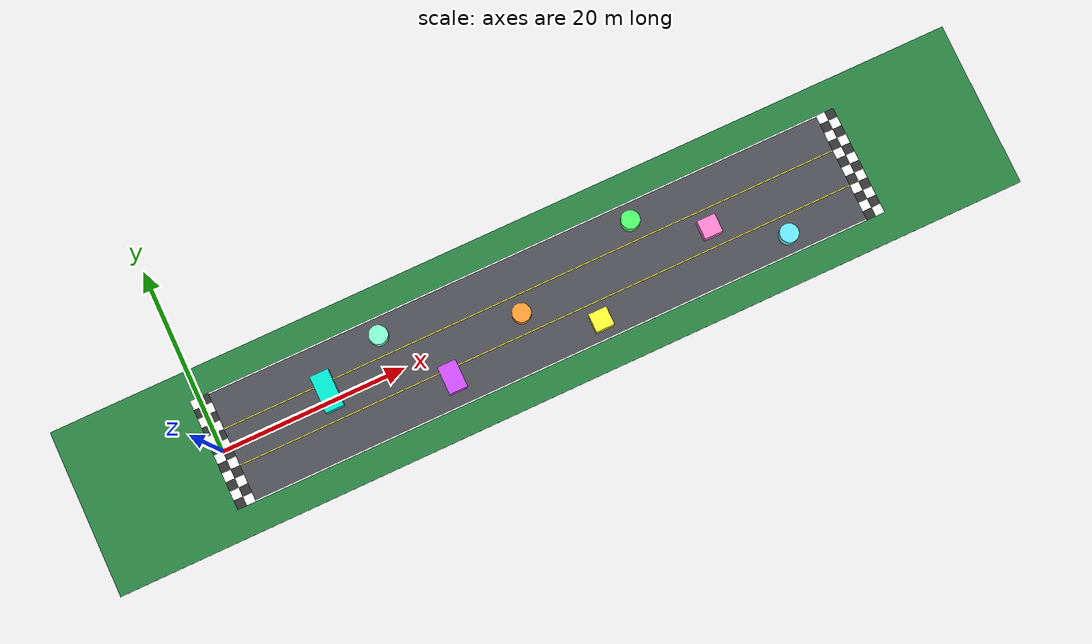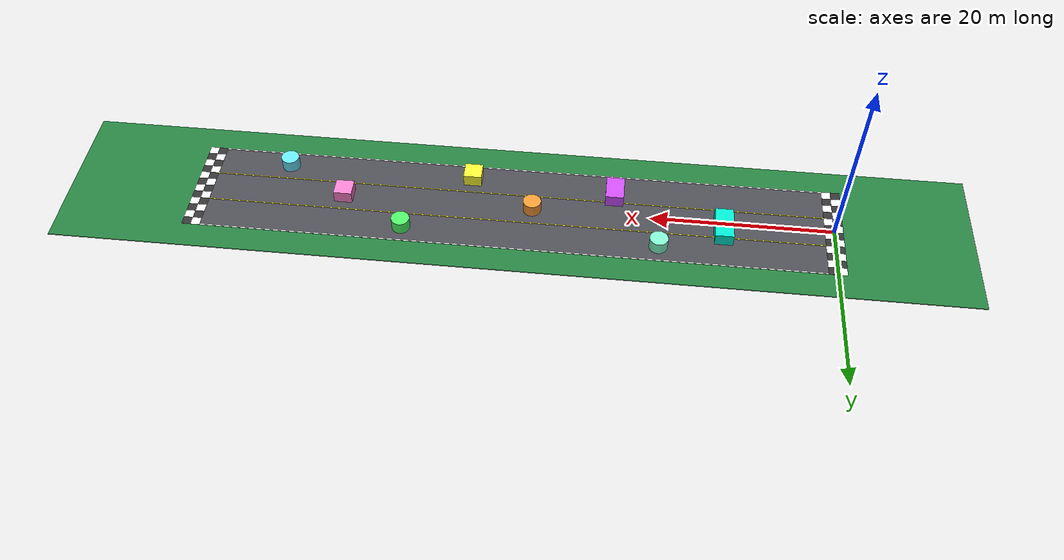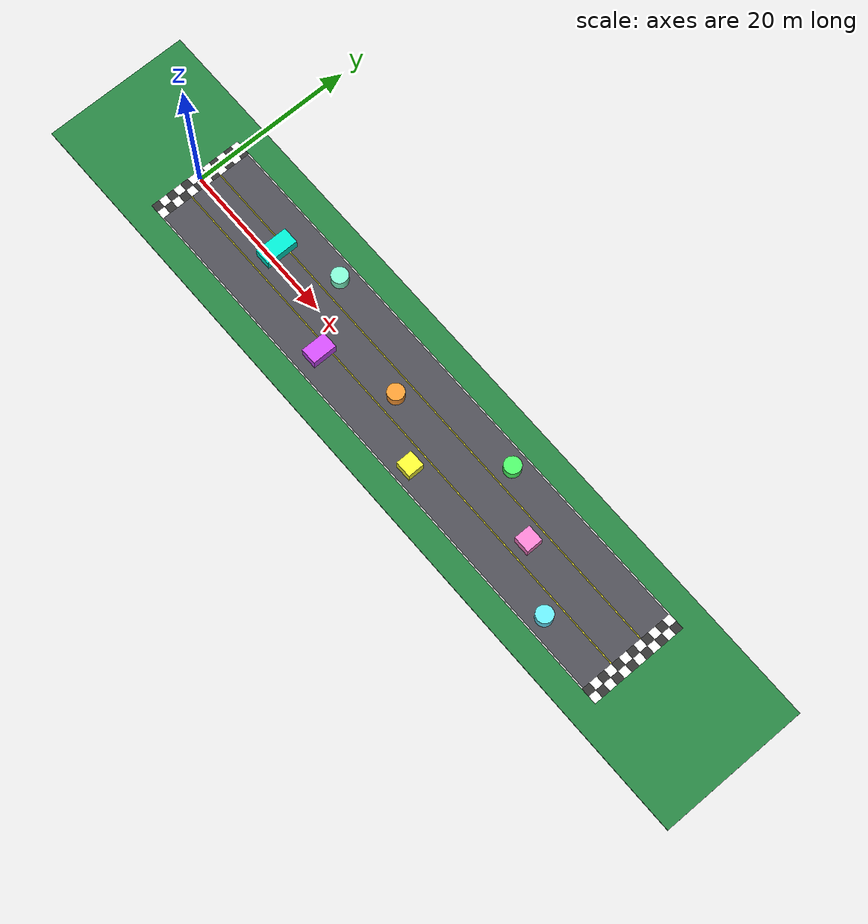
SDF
<?xml version="1.0" ?>
<sdf version="1.6">
  <world name="straight_road_world">

    <include>
      <uri>model://sun</uri>
    </include>

    <light name="fill_light" type="directional">
      <cast_shadows>false</cast_shadows>
      <pose>35 0 30 0 0 0</pose>
      <diffuse>0.5 0.5 0.5 1</diffuse>
      <specular>0.1 0.1 0.1 1</specular>
      <direction>0.3 -0.5 -1</direction>
    </light>

    <model name="ground_box">
  <static>true</static>
  <pose>35 0 -0.05 0 0 0</pose>
  <link name="ground_link">
    <collision name="ground_collision">
      <geometry><box><size>100 18 0.1</size></box></geometry>
    </collision>
    <visual name="ground_visual">
      <geometry><box><size>100 18 0.1</size></box></geometry>
      <material>
        <ambient>0.1 0.35 0.15 1</ambient>   <!-- Xanh lá đậm -->
        <diffuse>0.15 0.5 0.25 1</diffuse>    <!-- Xanh lá tươi -->
        <specular>0.02 0.02 0.02 1</specular> <!-- Ít phản xạ -->
      </material>
    </visual>
  </link>
</model>
    <!-- Road rộng 12m -->
    <model name="road_surface">
      <static>true</static>
      <pose>35 0 0.001 0 0 0</pose>
      <link name="road_link">
        <collision name="road_collision">
          <geometry><box><size>70 12 0.02</size></box></geometry>
        </collision>
        <visual name="road_visual">
          <geometry><box><size>70 12 0.02</size></box></geometry>
          <material>
            <ambient>0.25 0.25 0.28 1</ambient>
            <diffuse>0.3 0.3 0.33 1</diffuse>
            <specular>0.15 0.15 0.15 1</specular>
          </material>
        </visual>
      </link>
    </model>

    <!-- Edge lines: y = ±5.925 -->
    <model name="line_left_edge">
      <static>true</static>
      <pose>35 5.925 0.01 0 0 0</pose>
      <link name="link">
        <visual name="visual">
          <geometry><box><size>70 0.15 0.01</size></box></geometry>
          <material><ambient>0.9 0.9 0.9 1</ambient><diffuse>1 1 1 1</diffuse></material>
        </visual>
      </link>
    </model>

    <model name="line_right_edge">
      <static>true</static>
      <pose>35 -5.925 0.01 0 0 0</pose>
      <link name="link">
        <visual name="visual">
          <geometry><box><size>70 0.15 0.01</size></box></geometry>
          <material><ambient>0.9 0.9 0.9 1</ambient><diffuse>1 1 1 1</diffuse></material>
        </visual>
      </link>
    </model>

    <!-- Lane lines: 3 lanes (each 4m): y = ±2.0 -->
    <model name="line_lane_12">
      <static>true</static>
      <pose>35 2.0 0.01 0 0 0</pose>
      <link name="link">
        <visual name="visual">
          <geometry><box><size>70 0.12 0.01</size></box></geometry>
          <material><ambient>0.9 0.8 0.05 1</ambient><diffuse>1 0.9 0.2 1</diffuse></material>
        </visual>
      </link>
    </model>

    <model name="line_lane_23">
      <static>true</static>
      <pose>35 -2.0 0.01 0 0 0</pose>
      <link name="link">
        <visual name="visual">
          <geometry><box><size>70 0.12 0.01</size></box></geometry>
          <material><ambient>0.9 0.8 0.05 1</ambient><diffuse>1 0.9 0.2 1</diffuse></material>
        </visual>
      </link>
    </model>

      <!-- Start checker (full width 12m, lower z) - Black/White chess pattern -->
<model name="start_checker_01"><static>true</static><pose>-0.5  5.5 0.015 0 0 0</pose><link name="link"><visual name="visual"><geometry><box><size>1 1 0.005</size></box></geometry><material><ambient>0.95 0.95 0.95 1</ambient><diffuse>1 1 1 1</diffuse></material></visual></link></model>
<model name="start_checker_02"><static>true</static><pose> 0.5  5.5 0.015 0 0 0</pose><link name="link"><visual name="visual"><geometry><box><size>1 1 0.005</size></box></geometry><material><ambient>0.15 0.15 0.15 1</ambient><diffuse>0.2 0.2 0.2 1</diffuse></material></visual></link></model>

<model name="start_checker_03"><static>true</static><pose>-0.5  4.5 0.015 0 0 0</pose><link name="link"><visual name="visual"><geometry><box><size>1 1 0.005</size></box></geometry><material><ambient>0.15 0.15 0.15 1</ambient><diffuse>0.2 0.2 0.2 1</diffuse></material></visual></link></model>
<model name="start_checker_04"><static>true</static><pose> 0.5  4.5 0.015 0 0 0</pose><link name="link"><visual name="visual"><geometry><box><size>1 1 0.005</size></box></geometry><material><ambient>0.95 0.95 0.95 1</ambient><diffuse>1 1 1 1</diffuse></material></visual></link></model>

<model name="start_checker_05"><static>true</static><pose>-0.5  3.5 0.015 0 0 0</pose><link name="link"><visual name="visual"><geometry><box><size>1 1 0.005</size></box></geometry><material><ambient>0.95 0.95 0.95 1</ambient><diffuse>1 1 1 1</diffuse></material></visual></link></model>
<model name="start_checker_06"><static>true</static><pose> 0.5  3.5 0.015 0 0 0</pose><link name="link"><visual name="visual"><geometry><box><size>1 1 0.005</size></box></geometry><material><ambient>0.15 0.15 0.15 1</ambient><diffuse>0.2 0.2 0.2 1</diffuse></material></visual></link></model>

<model name="start_checker_07"><static>true</static><pose>-0.5  2.5 0.015 0 0 0</pose><link name="link"><visual name="visual"><geometry><box><size>1 1 0.005</size></box></geometry><material><ambient>0.15 0.15 0.15 1</ambient><diffuse>0.2 0.2 0.2 1</diffuse></material></visual></link></model>
<model name="start_checker_08"><static>true</static><pose> 0.5  2.5 0.015 0 0 0</pose><link name="link"><visual name="visual"><geometry><box><size>1 1 0.005</size></box></geometry><material><ambient>0.95 0.95 0.95 1</ambient><diffuse>1 1 1 1</diffuse></material></visual></link></model>

<model name="start_checker_09"><static>true</static><pose>-0.5  1.5 0.015 0 0 0</pose><link name="link"><visual name="visual"><geometry><box><size>1 1 0.005</size></box></geometry><material><ambient>0.95 0.95 0.95 1</ambient><diffuse>1 1 1 1</diffuse></material></visual></link></model>
<model name="start_checker_10"><static>true</static><pose> 0.5  1.5 0.015 0 0 0</pose><link name="link"><visual name="visual"><geometry><box><size>1 1 0.005</size></box></geometry><material><ambient>0.15 0.15 0.15 1</ambient><diffuse>0.2 0.2 0.2 1</diffuse></material></visual></link></model>

<model name="start_checker_11"><static>true</static><pose>-0.5  0.5 0.015 0 0 0</pose><link name="link"><visual name="visual"><geometry><box><size>1 1 0.005</size></box></geometry><material><ambient>0.15 0.15 0.15 1</ambient><diffuse>0.2 0.2 0.2 1</diffuse></material></visual></link></model>
<model name="start_checker_12"><static>true</static><pose> 0.5  0.5 0.015 0 0 0</pose><link name="link"><visual name="visual"><geometry><box><size>1 1 0.005</size></box></geometry><material><ambient>0.95 0.95 0.95 1</ambient><diffuse>1 1 1 1</diffuse></material></visual></link></model>

<model name="start_checker_13"><static>true</static><pose>-0.5 -0.5 0.015 0 0 0</pose><link name="link"><visual name="visual"><geometry><box><size>1 1 0.005</size></box></geometry><material><ambient>0.95 0.95 0.95 1</ambient><diffuse>1 1 1 1</diffuse></material></visual></link></model>
<model name="start_checker_14"><static>true</static><pose> 0.5 -0.5 0.015 0 0 0</pose><link name="link"><visual name="visual"><geometry><box><size>1 1 0.005</size></box></geometry><material><ambient>0.15 0.15 0.15 1</ambient><diffuse>0.2 0.2 0.2 1</diffuse></material></visual></link></model>

<model name="start_checker_15"><static>true</static><pose>-0.5 -1.5 0.015 0 0 0</pose><link name="link"><visual name="visual"><geometry><box><size>1 1 0.005</size></box></geometry><material><ambient>0.15 0.15 0.15 1</ambient><diffuse>0.2 0.2 0.2 1</diffuse></material></visual></link></model>
<model name="start_checker_16"><static>true</static><pose> 0.5 -1.5 0.015 0 0 0</pose><link name="link"><visual name="visual"><geometry><box><size>1 1 0.005</size></box></geometry><material><ambient>0.95 0.95 0.95 1</ambient><diffuse>1 1 1 1</diffuse></material></visual></link></model>

<model name="start_checker_17"><static>true</static><pose>-0.5 -2.5 0.015 0 0 0</pose><link name="link"><visual name="visual"><geometry><box><size>1 1 0.005</size></box></geometry><material><ambient>0.95 0.95 0.95 1</ambient><diffuse>1 1 1 1</diffuse></material></visual></link></model>
<model name="start_checker_18"><static>true</static><pose> 0.5 -2.5 0.015 0 0 0</pose><link name="link"><visual name="visual"><geometry><box><size>1 1 0.005</size></box></geometry><material><ambient>0.15 0.15 0.15 1</ambient><diffuse>0.2 0.2 0.2 1</diffuse></material></visual></link></model>

<model name="start_checker_19"><static>true</static><pose>-0.5 -3.5 0.015 0 0 0</pose><link name="link"><visual name="visual"><geometry><box><size>1 1 0.005</size></box></geometry><material><ambient>0.15 0.15 0.15 1</ambient><diffuse>0.2 0.2 0.2 1</diffuse></material></visual></link></model>
<model name="start_checker_20"><static>true</static><pose> 0.5 -3.5 0.015 0 0 0</pose><link name="link"><visual name="visual"><geometry><box><size>1 1 0.005</size></box></geometry><material><ambient>0.95 0.95 0.95 1</ambient><diffuse>1 1 1 1</diffuse></material></visual></link></model>

<model name="start_checker_21"><static>true</static><pose>-0.5 -4.5 0.015 0 0 0</pose><link name="link"><visual name="visual"><geometry><box><size>1 1 0.005</size></box></geometry><material><ambient>0.95 0.95 0.95 1</ambient><diffuse>1 1 1 1</diffuse></material></visual></link></model>
<model name="start_checker_22"><static>true</static><pose> 0.5 -4.5 0.015 0 0 0</pose><link name="link"><visual name="visual"><geometry><box><size>1 1 0.005</size></box></geometry><material><ambient>0.15 0.15 0.15 1</ambient><diffuse>0.2 0.2 0.2 1</diffuse></material></visual></link></model>

<model name="start_checker_23"><static>true</static><pose>-0.5 -5.5 0.015 0 0 0</pose><link name="link"><visual name="visual"><geometry><box><size>1 1 0.005</size></box></geometry><material><ambient>0.15 0.15 0.15 1</ambient><diffuse>0.2 0.2 0.2 1</diffuse></material></visual></link></model>
<model name="start_checker_24"><static>true</static><pose> 0.5 -5.5 0.015 0 0 0</pose><link name="link"><visual name="visual"><geometry><box><size>1 1 0.005</size></box></geometry><material><ambient>0.95 0.95 0.95 1</ambient><diffuse>1 1 1 1</diffuse></material></visual></link></model>

    <!-- Goal checker (full width 12m, lower z) - Black/White chess pattern -->
<model name="goal_checker_01"><static>true</static><pose> 69.5  5.5 0.015 0 0 0</pose><link name="link"><visual name="visual"><geometry><box><size>1 1 0.005</size></box></geometry><material><ambient>0.95 0.95 0.95 1</ambient><diffuse>1 1 1 1</diffuse></material></visual></link></model>
<model name="goal_checker_02"><static>true</static><pose>70.5  5.5 0.015 0 0 0</pose><link name="link"><visual name="visual"><geometry><box><size>1 1 0.005</size></box></geometry><material><ambient>0.15 0.15 0.15 1</ambient><diffuse>0.2 0.2 0.2 1</diffuse></material></visual></link></model>

<model name="goal_checker_03"><static>true</static><pose> 69.5  4.5 0.015 0 0 0</pose><link name="link"><visual name="visual"><geometry><box><size>1 1 0.005</size></box></geometry><material><ambient>0.15 0.15 0.15 1</ambient><diffuse>0.2 0.2 0.2 1</diffuse></material></visual></link></model>
<model name="goal_checker_04"><static>true</static><pose>70.5  4.5 0.015 0 0 0</pose><link name="link"><visual name="visual"><geometry><box><size>1 1 0.005</size></box></geometry><material><ambient>0.95 0.95 0.95 1</ambient><diffuse>1 1 1 1</diffuse></material></visual></link></model>

<model name="goal_checker_05"><static>true</static><pose> 69.5  3.5 0.015 0 0 0</pose><link name="link"><visual name="visual"><geometry><box><size>1 1 0.005</size></box></geometry><material><ambient>0.95 0.95 0.95 1</ambient><diffuse>1 1 1 1</diffuse></material></visual></link></model>
<model name="goal_checker_06"><static>true</static><pose>70.5  3.5 0.015 0 0 0</pose><link name="link"><visual name="visual"><geometry><box><size>1 1 0.005</size></box></geometry><material><ambient>0.15 0.15 0.15 1</ambient><diffuse>0.2 0.2 0.2 1</diffuse></material></visual></link></model>

<model name="goal_checker_07"><static>true</static><pose> 69.5  2.5 0.015 0 0 0</pose><link name="link"><visual name="visual"><geometry><box><size>1 1 0.005</size></box></geometry><material><ambient>0.15 0.15 0.15 1</ambient><diffuse>0.2 0.2 0.2 1</diffuse></material></visual></link></model>
<model name="goal_checker_08"><static>true</static><pose>70.5  2.5 0.015 0 0 0</pose><link name="link"><visual name="visual"><geometry><box><size>1 1 0.005</size></box></geometry><material><ambient>0.95 0.95 0.95 1</ambient><diffuse>1 1 1 1</diffuse></material></visual></link></model>

<model name="goal_checker_09"><static>true</static><pose> 69.5  1.5 0.015 0 0 0</pose><link name="link"><visual name="visual"><geometry><box><size>1 1 0.005</size></box></geometry><material><ambient>0.95 0.95 0.95 1</ambient><diffuse>1 1 1 1</diffuse></material></visual></link></model>
<model name="goal_checker_10"><static>true</static><pose>70.5  1.5 0.015 0 0 0</pose><link name="link"><visual name="visual"><geometry><box><size>1 1 0.005</size></box></geometry><material><ambient>0.15 0.15 0.15 1</ambient><diffuse>0.2 0.2 0.2 1</diffuse></material></visual></link></model>

<model name="goal_checker_11"><static>true</static><pose> 69.5  0.5 0.015 0 0 0</pose><link name="link"><visual name="visual"><geometry><box><size>1 1 0.005</size></box></geometry><material><ambient>0.15 0.15 0.15 1</ambient><diffuse>0.2 0.2 0.2 1</diffuse></material></visual></link></model>
<model name="goal_checker_12"><static>true</static><pose>70.5  0.5 0.015 0 0 0</pose><link name="link"><visual name="visual"><geometry><box><size>1 1 0.005</size></box></geometry><material><ambient>0.95 0.95 0.95 1</ambient><diffuse>1 1 1 1</diffuse></material></visual></link></model>

<model name="goal_checker_13"><static>true</static><pose> 69.5 -0.5 0.015 0 0 0</pose><link name="link"><visual name="visual"><geometry><box><size>1 1 0.005</size></box></geometry><material><ambient>0.95 0.95 0.95 1</ambient><diffuse>1 1 1 1</diffuse></material></visual></link></model>
<model name="goal_checker_14"><static>true</static><pose>70.5 -0.5 0.015 0 0 0</pose><link name="link"><visual name="visual"><geometry><box><size>1 1 0.005</size></box></geometry><material><ambient>0.15 0.15 0.15 1</ambient><diffuse>0.2 0.2 0.2 1</diffuse></material></visual></link></model>

<model name="goal_checker_15"><static>true</static><pose> 69.5 -1.5 0.015 0 0 0</pose><link name="link"><visual name="visual"><geometry><box><size>1 1 0.005</size></box></geometry><material><ambient>0.15 0.15 0.15 1</ambient><diffuse>0.2 0.2 0.2 1</diffuse></material></visual></link></model>
<model name="goal_checker_16"><static>true</static><pose>70.5 -1.5 0.015 0 0 0</pose><link name="link"><visual name="visual"><geometry><box><size>1 1 0.005</size></box></geometry><material><ambient>0.95 0.95 0.95 1</ambient><diffuse>1 1 1 1</diffuse></material></visual></link></model>

<model name="goal_checker_17"><static>true</static><pose> 69.5 -2.5 0.015 0 0 0</pose><link name="link"><visual name="visual"><geometry><box><size>1 1 0.005</size></box></geometry><material><ambient>0.95 0.95 0.95 1</ambient><diffuse>1 1 1 1</diffuse></material></visual></link></model>
<model name="goal_checker_18"><static>true</static><pose>70.5 -2.5 0.015 0 0 0</pose><link name="link"><visual name="visual"><geometry><box><size>1 1 0.005</size></box></geometry><material><ambient>0.15 0.15 0.15 1</ambient><diffuse>0.2 0.2 0.2 1</diffuse></material></visual></link></model>

<model name="goal_checker_19"><static>true</static><pose> 69.5 -3.5 0.015 0 0 0</pose><link name="link"><visual name="visual"><geometry><box><size>1 1 0.005</size></box></geometry><material><ambient>0.15 0.15 0.15 1</ambient><diffuse>0.2 0.2 0.2 1</diffuse></material></visual></link></model>
<model name="goal_checker_20"><static>true</static><pose>70.5 -3.5 0.015 0 0 0</pose><link name="link"><visual name="visual"><geometry><box><size>1 1 0.005</size></box></geometry><material><ambient>0.95 0.95 0.95 1</ambient><diffuse>1 1 1 1</diffuse></material></visual></link></model>

<model name="goal_checker_21"><static>true</static><pose> 69.5 -4.5 0.015 0 0 0</pose><link name="link"><visual name="visual"><geometry><box><size>1 1 0.005</size></box></geometry><material><ambient>0.95 0.95 0.95 1</ambient><diffuse>1 1 1 1</diffuse></material></visual></link></model>
<model name="goal_checker_22"><static>true</static><pose>70.5 -4.5 0.015 0 0 0</pose><link name="link"><visual name="visual"><geometry><box><size>1 1 0.005</size></box></geometry><material><ambient>0.15 0.15 0.15 1</ambient><diffuse>0.2 0.2 0.2 1</diffuse></material></visual></link></model>

<model name="goal_checker_23"><static>true</static><pose> 69.5 -5.5 0.015 0 0 0</pose><link name="link"><visual name="visual"><geometry><box><size>1 1 0.005</size></box></geometry><material><ambient>0.15 0.15 0.15 1</ambient><diffuse>0.2 0.2 0.2 1</diffuse></material></visual></link></model>
<model name="goal_checker_24"><static>true</static><pose>70.5 -5.5 0.015 0 0 0</pose><link name="link"><visual name="visual"><geometry><box><size>1 1 0.005</size></box></geometry><material><ambient>0.95 0.95 0.95 1</ambient><diffuse>1 1 1 1</diffuse></material></visual></link></model>

    <!-- Obstacles: optimized for start at center lane (y = 0) -->
<model name="obstacle_01"><static>true</static><pose>12  1.0 0.7 0 0 0</pose><link name="link">
  <collision name="collision"><geometry><box><size>2.0 2.0 1.4</size></box></geometry></collision>
  <visual name="visual"><geometry><box><size>2.0 4.0 1.4</size></box></geometry>
    <material><ambient>1 0.2 0.6 1</ambient><diffuse>0.0 0.9 0.8 1</diffuse><specular>0.3 0.3 0.3 1</specular></material>
  </visual>
</link></model>

<model name="obstacle_02"><static>true</static><pose>19  4.0 0.7 0 0 0</pose><link name="link">
  <collision name="collision"><geometry><cylinder><radius>1.0</radius><length>1.4</length></cylinder></geometry></collision>
  <visual name="visual"><geometry><cylinder><radius>1.0</radius><length>1.4</length></cylinder></geometry>
    <material><ambient>0.2 0.6 1 1</ambient><diffuse>0.5 1.0 0.8 1</diffuse><specular>0.3 0.3 0.3 1</specular></material>
  </visual>
</link></model>

<model name="obstacle_03"><static>true</static><pose>24 -3.0 0.7 0 0 0</pose><link name="link">
  <collision name="collision"><geometry><box><size>2.0 2.0 1.4</size></box></geometry></collision>
  <visual name="visual"><geometry><box><size>2.0 3.0 1.4</size></box></geometry>
    <material><ambient>0.7 0.2 0.9 1</ambient><diffuse>0.8 0.3 1 1</diffuse><specular>0.3 0.3 0.3 1</specular></material>
  </visual>
</link></model>

<model name="obstacle_04"><static>true</static><pose>33  0.0 0.7 0 0 0</pose><link name="link">
  <collision name="collision"><geometry><cylinder><radius>1.0</radius><length>1.4</length></cylinder></geometry></collision>
  <visual name="visual"><geometry><cylinder><radius>1.0</radius><length>1.4</length></cylinder></geometry>
    <material><ambient>1 0.5 0.1 1</ambient><diffuse>1 0.6 0.2 1</diffuse><specular>0.3 0.3 0.3 1</specular></material>
  </visual>
</link></model>

<model name="obstacle_05"><static>true</static><pose>40 -4.0 0.7 0 0 0</pose><link name="link">
  <collision name="collision"><geometry><box><size>2.0 2.0 1.4</size></box></geometry></collision>
  <visual name="visual"><geometry><box><size>2.0 2.0 1.4</size></box></geometry>
    <material><ambient>1 0.9 0.1 1</ambient><diffuse>1 1 0.2 1</diffuse><specular>0.3 0.3 0.3 1</specular></material>
  </visual>
</link></model>

<model name="obstacle_06"><static>true</static><pose>47  4.0 0.7 0 0 0</pose><link name="link">
  <collision name="collision"><geometry><cylinder><radius>1.0</radius><length>1.4</length></cylinder></geometry></collision>
  <visual name="visual"><geometry><cylinder><radius>1.0</radius><length>1.4</length></cylinder></geometry>
    <material><ambient>0.2 0.9 0.3 1</ambient><diffuse>0.3 1 0.4 1</diffuse><specular>0.3 0.3 0.3 1</specular></material>
  </visual>
</link></model>

<model name="obstacle_07"><static>true</static><pose>54  0.0 0.7 0 0 0</pose><link name="link">
  <collision name="collision"><geometry><box><size>2.0 2.0 1.4</size></box></geometry></collision>
  <visual name="visual"><geometry><box><size>2.0 2.0 1.4</size></box></geometry>
    <material><ambient>1 0.4 0.7 1</ambient><diffuse>1 0.5 0.8 1</diffuse><specular>0.3 0.3 0.3 1</specular></material>
  </visual>
</link></model>

<model name="obstacle_08"><static>true</static><pose>61 -4.0 0.7 0 0 0</pose><link name="link">
  <collision name="collision"><geometry><cylinder><radius>1.0</radius><length>1.4</length></cylinder></geometry></collision>
  <visual name="visual"><geometry><cylinder><radius>1.0</radius><length>1.4</length></cylinder></geometry>
    <material><ambient>0.3 0.8 1 1</ambient><diffuse>0.4 0.9 1 1</diffuse><specular>0.3 0.3 0.3 1</specular></material>
  </visual>
</link></model>

<gui fullscreen='0'>
  <camera name='user_camera'>
    <!-- X Y Z ROLL PITCH YAW -->
    <!-- TAM DUONG: (35, 0), CAO LEN: Z=18, NHIN XUONG: PITCH=-1.57 -->
    <pose>35 0 24 0 1.57 1.57</pose>
  </camera>
</gui>
  </world>

</sdf>
